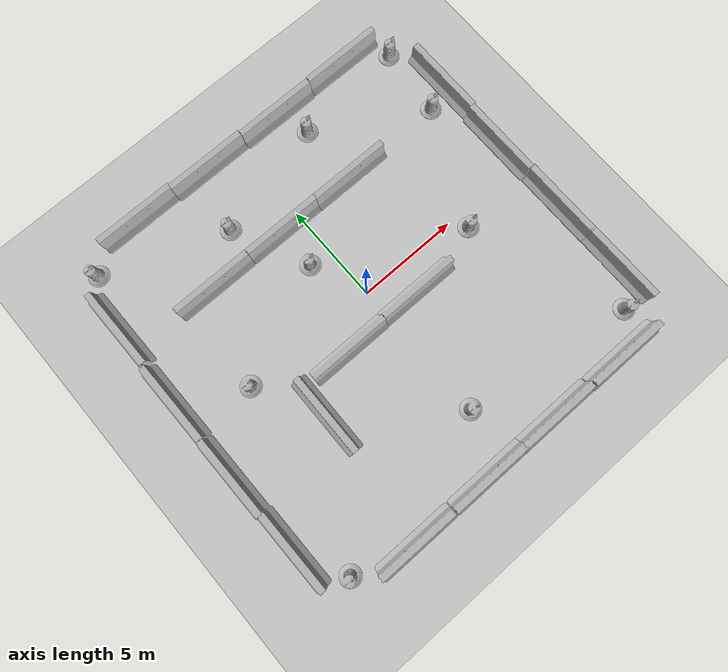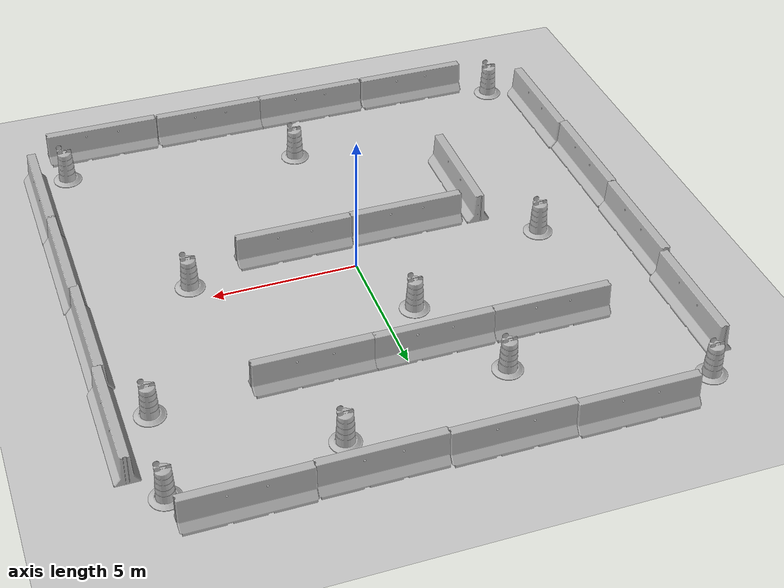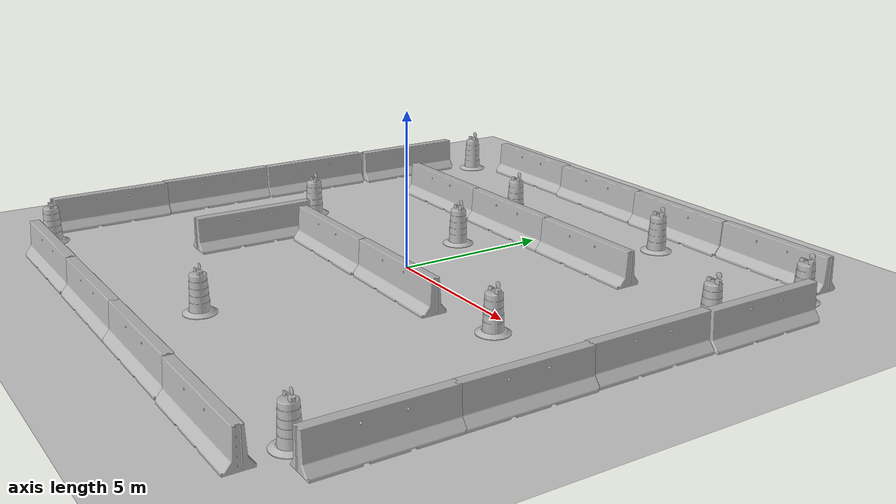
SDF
<sdf version="1.6">
 <world name="default">
  <light name="sun" type="directional">
   <pose>0 0 10 0 -0 0</pose>
   <diffuse>0.8 0.8 0.8 1</diffuse>
   <specular>0.2 0.2 0.2 1</specular>
   <attenuation>
    <range>1000</range>
    <constant>0.9</constant>
    <linear>0.01</linear>
    <quadratic>0.001</quadratic>
   </attenuation>
   <direction>-0.5 0.1 -0.9</direction>
  </light>
  <model name="ground_plane">
   <static>1</static>
   <link name="link">
    <collision name="collision">
     <geometry><plane><normal>0 0 1</normal><size>100 100</size></plane></geometry>
     <surface><friction><ode><mu>100</mu><mu2>50</mu2></ode></friction></surface>
    </collision>
    <visual name="visual">
     <cast_shadows>0</cast_shadows>
     <geometry><plane><normal>0 0 1</normal><size>100 100</size></plane></geometry>
     <material>
      <script><uri>file://media/materials/scripts/gazebo.material</uri><name>Gazebo/Grey</name></script>
     </material>
    </visual>
   </link>
  </model>
  <gravity>0 0 -9.8</gravity>
  <magnetic_field>6e-06 2.3e-05 -4.2e-05</magnetic_field>
  <atmosphere type="adiabatic"/>
  <physics name="default_physics" default="0" type="ode">
   <max_step_size>0.001</max_step_size>
   <real_time_factor>1</real_time_factor>
   <real_time_update_rate>1000</real_time_update_rate>
  </physics>
  <scene><ambient>0.4 0.4 0.4 1</ambient><background>0.7 0.7 0.7 1</background><shadows>1</shadows></scene>
  <spherical_coordinates>
   <surface_model>EARTH_WGS84</surface_model>
   <latitude_deg>0</latitude_deg>
   <longitude_deg>0</longitude_deg>
   <elevation>0</elevation>
   <heading_deg>0</heading_deg>
  </spherical_coordinates>
  <model name="jersey_barrier">
   <static>1</static>
   <link name="link">
    <visual name="visual">
     <geometry><mesh><uri>model://jersey_barrier/meshes/jersey_barrier.dae</uri></mesh></geometry>
    </visual>
    <collision name="upright">
     <pose>0 0 0.5715 0 -0 0</pose>
     <geometry><box><size>4.06542 0.3063 1.143</size></box></geometry>
    </collision>
    <collision name="base">
     <pose>0 0 0.032258 0 -0 0</pose>
     <geometry><box><size>4.06542 0.8107 0.064516</size></box></geometry>
    </collision>
    <collision name="base2">
     <pose>0 0 0.1 0 -0 0</pose>
     <geometry><box><size>4.06542 0.65 0.1</size></box></geometry>
    </collision>
    <collision name="base3">
     <pose>0 0 0.2 0 -0 0</pose>
     <geometry><box><size>4.06542 0.5 0.1</size></box></geometry>
    </collision>
    <collision name="left-angle">
     <pose>0 -0.224 0.2401 0.9 -0 0</pose>
     <geometry><box><size>4.06542 0.5 0.064516</size></box></geometry>
    </collision>
    <collision name="right-angle">
     <pose>0 0.224 0.2401 -0.9 0 0</pose>
     <geometry><box><size>4.06542 0.5 0.064516</size></box></geometry>
    </collision>
   </link>
   <pose>-5.65677 9.4608 0 0 -0 0</pose>
  </model>
  <model name="jersey_barrier_clone">
   <static>1</static>
   <link name="link">
    <visual name="visual">
     <geometry><mesh><uri>model://jersey_barrier/meshes/jersey_barrier.dae</uri></mesh></geometry>
    </visual>
    <collision name="upright">
     <pose>0 0 0.5715 0 -0 0</pose>
     <geometry><box><size>4.06542 0.3063 1.143</size></box></geometry>
    </collision>
    <collision name="base">
     <pose>0 0 0.032258 0 -0 0</pose>
     <geometry><box><size>4.06542 0.8107 0.064516</size></box></geometry>
    </collision>
    <collision name="base2">
     <pose>0 0 0.1 0 -0 0</pose>
     <geometry><box><size>4.06542 0.65 0.1</size></box></geometry>
    </collision>
    <collision name="base3">
     <pose>0 0 0.2 0 -0 0</pose>
     <geometry><box><size>4.06542 0.5 0.1</size></box></geometry>
    </collision>
    <collision name="left-angle">
     <pose>0 -0.224 0.2401 0.9 -0 0</pose>
     <geometry><box><size>4.06542 0.5 0.064516</size></box></geometry>
    </collision>
    <collision name="right-angle">
     <pose>0 0.224 0.2401 -0.9 0 0</pose>
     <geometry><box><size>4.06542 0.5 0.064516</size></box></geometry>
    </collision>
   </link>
   <pose>-1.65987 9.36075 0 0 -0 0</pose>
  </model>
  <model name="jersey_barrier_clone_0">
   <static>1</static>
   <link name="link">
    <visual name="visual">
     <geometry><mesh><uri>model://jersey_barrier/meshes/jersey_barrier.dae</uri></mesh></geometry>
    </visual>
    <collision name="upright">
     <pose>0 0 0.5715 0 -0 0</pose>
     <geometry><box><size>4.06542 0.3063 1.143</size></box></geometry>
    </collision>
    <collision name="base">
     <pose>0 0 0.032258 0 -0 0</pose>
     <geometry><box><size>4.06542 0.8107 0.064516</size></box></geometry>
    </collision>
    <collision name="base2">
     <pose>0 0 0.1 0 -0 0</pose>
     <geometry><box><size>4.06542 0.65 0.1</size></box></geometry>
    </collision>
    <collision name="base3">
     <pose>0 0 0.2 0 -0 0</pose>
     <geometry><box><size>4.06542 0.5 0.1</size></box></geometry>
    </collision>
    <collision name="left-angle">
     <pose>0 -0.224 0.2401 0.9 -0 0</pose>
     <geometry><box><size>4.06542 0.5 0.064516</size></box></geometry>
    </collision>
    <collision name="right-angle">
     <pose>0 0.224 0.2401 -0.9 0 0</pose>
     <geometry><box><size>4.06542 0.5 0.064516</size></box></geometry>
    </collision>
   </link>
   <pose>2.39773 9.29085 0 0 -0 0</pose>
  </model>
  <model name="jersey_barrier_clone_1">
   <static>1</static>
   <link name="link">
    <visual name="visual">
     <geometry><mesh><uri>model://jersey_barrier/meshes/jersey_barrier.dae</uri></mesh></geometry>
    </visual>
    <collision name="upright">
     <pose>0 0 0.5715 0 -0 0</pose>
     <geometry><box><size>4.06542 0.3063 1.143</size></box></geometry>
    </collision>
    <collision name="base">
     <pose>0 0 0.032258 0 -0 0</pose>
     <geometry><box><size>4.06542 0.8107 0.064516</size></box></geometry>
    </collision>
    <collision name="base2">
     <pose>0 0 0.1 0 -0 0</pose>
     <geometry><box><size>4.06542 0.65 0.1</size></box></geometry>
    </collision>
    <collision name="base3">
     <pose>0 0 0.2 0 -0 0</pose>
     <geometry><box><size>4.06542 0.5 0.1</size></box></geometry>
    </collision>
    <collision name="left-angle">
     <pose>0 -0.224 0.2401 0.9 -0 0</pose>
     <geometry><box><size>4.06542 0.5 0.064516</size></box></geometry>
    </collision>
    <collision name="right-angle">
     <pose>0 0.224 0.2401 -0.9 0 0</pose>
     <geometry><box><size>4.06542 0.5 0.064516</size></box></geometry>
    </collision>
   </link>
   <pose>6.45464 9.33993 0 0 -0 0</pose>
  </model>
  <model name="jersey_barrier_clone_3">
   <static>1</static>
   <link name="link">
    <visual name="visual">
     <geometry><mesh><uri>model://jersey_barrier/meshes/jersey_barrier.dae</uri></mesh></geometry>
    </visual>
    <collision name="upright">
     <pose>0 0 0.5715 0 -0 0</pose>
     <geometry><box><size>4.06542 0.3063 1.143</size></box></geometry>
    </collision>
    <collision name="base">
     <pose>0 0 0.032258 0 -0 0</pose>
     <geometry><box><size>4.06542 0.8107 0.064516</size></box></geometry>
    </collision>
    <collision name="base2">
     <pose>0 0 0.1 0 -0 0</pose>
     <geometry><box><size>4.06542 0.65 0.1</size></box></geometry>
    </collision>
    <collision name="base3">
     <pose>0 0 0.2 0 -0 0</pose>
     <geometry><box><size>4.06542 0.5 0.1</size></box></geometry>
    </collision>
    <collision name="left-angle">
     <pose>0 -0.224 0.2401 0.9 -0 0</pose>
     <geometry><box><size>4.06542 0.5 0.064516</size></box></geometry>
    </collision>
    <collision name="right-angle">
     <pose>0 0.224 0.2401 -0.9 0 0</pose>
     <geometry><box><size>4.06542 0.5 0.064516</size></box></geometry>
    </collision>
   </link>
   <pose>9.44656 5.35522 0 0 0 -1.56865</pose>
  </model>
  <model name="jersey_barrier_clone_3_clone">
   <static>1</static>
   <link name="link">
    <visual name="visual">
     <geometry><mesh><uri>model://jersey_barrier/meshes/jersey_barrier.dae</uri></mesh></geometry>
    </visual>
    <collision name="upright">
     <pose>0 0 0.5715 0 -0 0</pose>
     <geometry><box><size>4.06542 0.3063 1.143</size></box></geometry>
    </collision>
    <collision name="base">
     <pose>0 0 0.032258 0 -0 0</pose>
     <geometry><box><size>4.06542 0.8107 0.064516</size></box></geometry>
    </collision>
    <collision name="base2">
     <pose>0 0 0.1 0 -0 0</pose>
     <geometry><box><size>4.06542 0.65 0.1</size></box></geometry>
    </collision>
    <collision name="base3">
     <pose>0 0 0.2 0 -0 0</pose>
     <geometry><box><size>4.06542 0.5 0.1</size></box></geometry>
    </collision>
    <collision name="left-angle">
     <pose>0 -0.224 0.2401 0.9 -0 0</pose>
     <geometry><box><size>4.06542 0.5 0.064516</size></box></geometry>
    </collision>
    <collision name="right-angle">
     <pose>0 0.224 0.2401 -0.9 0 0</pose>
     <geometry><box><size>4.06542 0.5 0.064516</size></box></geometry>
    </collision>
   </link>
   <pose>9.3727 1.33119 0 0 0 -1.56865</pose>
  </model>
  <model name="jersey_barrier_clone_3_clone_0">
   <static>1</static>
   <link name="link">
    <visual name="visual">
     <geometry><mesh><uri>model://jersey_barrier/meshes/jersey_barrier.dae</uri></mesh></geometry>
    </visual>
    <collision name="upright">
     <pose>0 0 0.5715 0 -0 0</pose>
     <geometry><box><size>4.06542 0.3063 1.143</size></box></geometry>
    </collision>
    <collision name="base">
     <pose>0 0 0.032258 0 -0 0</pose>
     <geometry><box><size>4.06542 0.8107 0.064516</size></box></geometry>
    </collision>
    <collision name="base2">
     <pose>0 0 0.1 0 -0 0</pose>
     <geometry><box><size>4.06542 0.65 0.1</size></box></geometry>
    </collision>
    <collision name="base3">
     <pose>0 0 0.2 0 -0 0</pose>
     <geometry><box><size>4.06542 0.5 0.1</size></box></geometry>
    </collision>
    <collision name="left-angle">
     <pose>0 -0.224 0.2401 0.9 -0 0</pose>
     <geometry><box><size>4.06542 0.5 0.064516</size></box></geometry>
    </collision>
    <collision name="right-angle">
     <pose>0 0.224 0.2401 -0.9 0 0</pose>
     <geometry><box><size>4.06542 0.5 0.064516</size></box></geometry>
    </collision>
   </link>
   <pose>9.4315 -2.6268 0 0 0 -1.56865</pose>
  </model>
  <model name="jersey_barrier_clone_3_clone_1">
   <static>1</static>
   <link name="link">
    <visual name="visual">
     <geometry><mesh><uri>model://jersey_barrier/meshes/jersey_barrier.dae</uri></mesh></geometry>
    </visual>
    <collision name="upright">
     <pose>0 0 0.5715 0 -0 0</pose>
     <geometry><box><size>4.06542 0.3063 1.143</size></box></geometry>
    </collision>
    <collision name="base">
     <pose>0 0 0.032258 0 -0 0</pose>
     <geometry><box><size>4.06542 0.8107 0.064516</size></box></geometry>
    </collision>
    <collision name="base2">
     <pose>0 0 0.1 0 -0 0</pose>
     <geometry><box><size>4.06542 0.65 0.1</size></box></geometry>
    </collision>
    <collision name="base3">
     <pose>0 0 0.2 0 -0 0</pose>
     <geometry><box><size>4.06542 0.5 0.1</size></box></geometry>
    </collision>
    <collision name="left-angle">
     <pose>0 -0.224 0.2401 0.9 -0 0</pose>
     <geometry><box><size>4.06542 0.5 0.064516</size></box></geometry>
    </collision>
    <collision name="right-angle">
     <pose>0 0.224 0.2401 -0.9 0 0</pose>
     <geometry><box><size>4.06542 0.5 0.064516</size></box></geometry>
    </collision>
   </link>
   <pose>9.44969 -6.53485 0 0 0 -1.56865</pose>
  </model>
  <model name="jersey_barrier_clone_2_clone">
   <static>1</static>
   <link name="link">
    <visual name="visual">
     <geometry><mesh><uri>model://jersey_barrier/meshes/jersey_barrier.dae</uri></mesh></geometry>
    </visual>
    <collision name="upright">
     <pose>0 0 0.5715 0 -0 0</pose>
     <geometry><box><size>4.06542 0.3063 1.143</size></box></geometry>
    </collision>
    <collision name="base">
     <pose>0 0 0.032258 0 -0 0</pose>
     <geometry><box><size>4.06542 0.8107 0.064516</size></box></geometry>
    </collision>
    <collision name="base2">
     <pose>0 0 0.1 0 -0 0</pose>
     <geometry><box><size>4.06542 0.65 0.1</size></box></geometry>
    </collision>
    <collision name="base3">
     <pose>0 0 0.2 0 -0 0</pose>
     <geometry><box><size>4.06542 0.5 0.1</size></box></geometry>
    </collision>
    <collision name="left-angle">
     <pose>0 -0.224 0.2401 0.9 -0 0</pose>
     <geometry><box><size>4.06542 0.5 0.064516</size></box></geometry>
    </collision>
    <collision name="right-angle">
     <pose>0 0.224 0.2401 -0.9 0 0</pose>
     <geometry><box><size>4.06542 0.5 0.064516</size></box></geometry>
    </collision>
   </link>
   <pose>6.70657 -9.54347 0 0 -0 0</pose>
  </model>
  <model name="jersey_barrier_clone_2_clone_0">
   <static>1</static>
   <link name="link">
    <visual name="visual">
     <geometry><mesh><uri>model://jersey_barrier/meshes/jersey_barrier.dae</uri></mesh></geometry>
    </visual>
    <collision name="upright">
     <pose>0 0 0.5715 0 -0 0</pose>
     <geometry><box><size>4.06542 0.3063 1.143</size></box></geometry>
    </collision>
    <collision name="base">
     <pose>0 0 0.032258 0 -0 0</pose>
     <geometry><box><size>4.06542 0.8107 0.064516</size></box></geometry>
    </collision>
    <collision name="base2">
     <pose>0 0 0.1 0 -0 0</pose>
     <geometry><box><size>4.06542 0.65 0.1</size></box></geometry>
    </collision>
    <collision name="base3">
     <pose>0 0 0.2 0 -0 0</pose>
     <geometry><box><size>4.06542 0.5 0.1</size></box></geometry>
    </collision>
    <collision name="left-angle">
     <pose>0 -0.224 0.2401 0.9 -0 0</pose>
     <geometry><box><size>4.06542 0.5 0.064516</size></box></geometry>
    </collision>
    <collision name="right-angle">
     <pose>0 0.224 0.2401 -0.9 0 0</pose>
     <geometry><box><size>4.06542 0.5 0.064516</size></box></geometry>
    </collision>
   </link>
   <pose>2.59616 -9.50928 0 0 -0 0</pose>
  </model>
  <model name="jersey_barrier_clone_2_clone_1">
   <static>1</static>
   <link name="link">
    <visual name="visual">
     <geometry><mesh><uri>model://jersey_barrier/meshes/jersey_barrier.dae</uri></mesh></geometry>
    </visual>
    <collision name="upright">
     <pose>0 0 0.5715 0 -0 0</pose>
     <geometry><box><size>4.06542 0.3063 1.143</size></box></geometry>
    </collision>
    <collision name="base">
     <pose>0 0 0.032258 0 -0 0</pose>
     <geometry><box><size>4.06542 0.8107 0.064516</size></box></geometry>
    </collision>
    <collision name="base2">
     <pose>0 0 0.1 0 -0 0</pose>
     <geometry><box><size>4.06542 0.65 0.1</size></box></geometry>
    </collision>
    <collision name="base3">
     <pose>0 0 0.2 0 -0 0</pose>
     <geometry><box><size>4.06542 0.5 0.1</size></box></geometry>
    </collision>
    <collision name="left-angle">
     <pose>0 -0.224 0.2401 0.9 -0 0</pose>
     <geometry><box><size>4.06542 0.5 0.064516</size></box></geometry>
    </collision>
    <collision name="right-angle">
     <pose>0 0.224 0.2401 -0.9 0 0</pose>
     <geometry><box><size>4.06542 0.5 0.064516</size></box></geometry>
    </collision>
   </link>
   <pose>-1.33414 -9.50852 0 0 -0 0</pose>
  </model>
  <model name="jersey_barrier_clone_2_clone_2">
   <static>1</static>
   <link name="link">
    <visual name="visual">
     <geometry><mesh><uri>model://jersey_barrier/meshes/jersey_barrier.dae</uri></mesh></geometry>
    </visual>
    <collision name="upright">
     <pose>0 0 0.5715 0 -0 0</pose>
     <geometry><box><size>4.06542 0.3063 1.143</size></box></geometry>
    </collision>
    <collision name="base">
     <pose>0 0 0.032258 0 -0 0</pose>
     <geometry><box><size>4.06542 0.8107 0.064516</size></box></geometry>
    </collision>
    <collision name="base2">
     <pose>0 0 0.1 0 -0 0</pose>
     <geometry><box><size>4.06542 0.65 0.1</size></box></geometry>
    </collision>
    <collision name="base3">
     <pose>0 0 0.2 0 -0 0</pose>
     <geometry><box><size>4.06542 0.5 0.1</size></box></geometry>
    </collision>
    <collision name="left-angle">
     <pose>0 -0.224 0.2401 0.9 -0 0</pose>
     <geometry><box><size>4.06542 0.5 0.064516</size></box></geometry>
    </collision>
    <collision name="right-angle">
     <pose>0 0.224 0.2401 -0.9 0 0</pose>
     <geometry><box><size>4.06542 0.5 0.064516</size></box></geometry>
    </collision>
   </link>
   <pose>-5.44605 -9.49634 0 0 -0 0</pose>
  </model>
  <model name="jersey_barrier_clone_3_clone_1_clone">
   <static>1</static>
   <link name="link">
    <visual name="visual">
     <geometry><mesh><uri>model://jersey_barrier/meshes/jersey_barrier.dae</uri></mesh></geometry>
    </visual>
    <collision name="upright">
     <pose>0 0 0.5715 0 -0 0</pose>
     <geometry><box><size>4.06542 0.3063 1.143</size></box></geometry>
    </collision>
    <collision name="base">
     <pose>0 0 0.032258 0 -0 0</pose>
     <geometry><box><size>4.06542 0.8107 0.064516</size></box></geometry>
    </collision>
    <collision name="base2">
     <pose>0 0 0.1 0 -0 0</pose>
     <geometry><box><size>4.06542 0.65 0.1</size></box></geometry>
    </collision>
    <collision name="base3">
     <pose>0 0 0.2 0 -0 0</pose>
     <geometry><box><size>4.06542 0.5 0.1</size></box></geometry>
    </collision>
    <collision name="left-angle">
     <pose>0 -0.224 0.2401 0.9 -0 0</pose>
     <geometry><box><size>4.06542 0.5 0.064516</size></box></geometry>
    </collision>
    <collision name="right-angle">
     <pose>0 0.224 0.2401 -0.9 0 0</pose>
     <geometry><box><size>4.06542 0.5 0.064516</size></box></geometry>
    </collision>
   </link>
   <pose>-9.54289 -6.33149 0 0 0 -1.56865</pose>
  </model>
  <model name="jersey_barrier_clone_3_clone_1_clone_0">
   <static>1</static>
   <link name="link">
    <visual name="visual">
     <geometry><mesh><uri>model://jersey_barrier/meshes/jersey_barrier.dae</uri></mesh></geometry>
    </visual>
    <collision name="upright">
     <pose>0 0 0.5715 0 -0 0</pose>
     <geometry><box><size>4.06542 0.3063 1.143</size></box></geometry>
    </collision>
    <collision name="base">
     <pose>0 0 0.032258 0 -0 0</pose>
     <geometry><box><size>4.06542 0.8107 0.064516</size></box></geometry>
    </collision>
    <collision name="base2">
     <pose>0 0 0.1 0 -0 0</pose>
     <geometry><box><size>4.06542 0.65 0.1</size></box></geometry>
    </collision>
    <collision name="base3">
     <pose>0 0 0.2 0 -0 0</pose>
     <geometry><box><size>4.06542 0.5 0.1</size></box></geometry>
    </collision>
    <collision name="left-angle">
     <pose>0 -0.224 0.2401 0.9 -0 0</pose>
     <geometry><box><size>4.06542 0.5 0.064516</size></box></geometry>
    </collision>
    <collision name="right-angle">
     <pose>0 0.224 0.2401 -0.9 0 0</pose>
     <geometry><box><size>4.06542 0.5 0.064516</size></box></geometry>
    </collision>
   </link>
   <pose>-9.6221 -2.35336 0 0 0 -1.56865</pose>
  </model>
  <model name="jersey_barrier_clone_3_clone_1_clone_1">
   <static>1</static>
   <link name="link">
    <visual name="visual">
     <geometry><mesh><uri>model://jersey_barrier/meshes/jersey_barrier.dae</uri></mesh></geometry>
    </visual>
    <collision name="upright">
     <pose>0 0 0.5715 0 -0 0</pose>
     <geometry><box><size>4.06542 0.3063 1.143</size></box></geometry>
    </collision>
    <collision name="base">
     <pose>0 0 0.032258 0 -0 0</pose>
     <geometry><box><size>4.06542 0.8107 0.064516</size></box></geometry>
    </collision>
    <collision name="base2">
     <pose>0 0 0.1 0 -0 0</pose>
     <geometry><box><size>4.06542 0.65 0.1</size></box></geometry>
    </collision>
    <collision name="base3">
     <pose>0 0 0.2 0 -0 0</pose>
     <geometry><box><size>4.06542 0.5 0.1</size></box></geometry>
    </collision>
    <collision name="left-angle">
     <pose>0 -0.224 0.2401 0.9 -0 0</pose>
     <geometry><box><size>4.06542 0.5 0.064516</size></box></geometry>
    </collision>
    <collision name="right-angle">
     <pose>0 0.224 0.2401 -0.9 0 0</pose>
     <geometry><box><size>4.06542 0.5 0.064516</size></box></geometry>
    </collision>
   </link>
   <pose>-9.58952 1.69745 0 0 0 -1.56865</pose>
  </model>
  <model name="jersey_barrier_clone_3_clone_1_clone_2">
   <static>1</static>
   <link name="link">
    <visual name="visual">
     <geometry><mesh><uri>model://jersey_barrier/meshes/jersey_barrier.dae</uri></mesh></geometry>
    </visual>
    <collision name="upright">
     <pose>0 0 0.5715 0 -0 0</pose>
     <geometry><box><size>4.06542 0.3063 1.143</size></box></geometry>
    </collision>
    <collision name="base">
     <pose>0 0 0.032258 0 -0 0</pose>
     <geometry><box><size>4.06542 0.8107 0.064516</size></box></geometry>
    </collision>
    <collision name="base2">
     <pose>0 0 0.1 0 -0 0</pose>
     <geometry><box><size>4.06542 0.65 0.1</size></box></geometry>
    </collision>
    <collision name="base3">
     <pose>0 0 0.2 0 -0 0</pose>
     <geometry><box><size>4.06542 0.5 0.1</size></box></geometry>
    </collision>
    <collision name="left-angle">
     <pose>0 -0.224 0.2401 0.9 -0 0</pose>
     <geometry><box><size>4.06542 0.5 0.064516</size></box></geometry>
    </collision>
    <collision name="right-angle">
     <pose>0 0.224 0.2401 -0.9 0 0</pose>
     <geometry><box><size>4.06542 0.5 0.064516</size></box></geometry>
    </collision>
   </link>
   <pose>-9.44715 5.83721 0 0 0 -1.56865</pose>
  </model>
  <model name="Construction Barrel">
   <link name="link">
    <inertial>
     <pose>0 0 0.4 0 -0 0</pose>
     <mass>500</mass>
     <inertia><ixx>51.2096</ixx><iyy>51.2096</iyy><izz>25</izz><ixy>0</ixy><ixz>0</ixz><iyz>0</iyz></inertia>
    </inertial>
    <collision name="collision">
     <geometry><mesh><uri>model://construction_barrel/meshes/construction_barrel.dae</uri></mesh></geometry>
    </collision>
    <visual name="visual">
     <geometry><mesh><uri>model://construction_barrel/meshes/construction_barrel.dae</uri></mesh></geometry>
    </visual>
   </link>
   <pose>8.53271 8.19898 -1e-06 0 5e-06 -0.000131</pose>
  </model>
  <model name="Construction Barrel_0">
   <link name="link">
    <inertial>
     <pose>0 0 0.4 0 -0 0</pose>
     <mass>500</mass>
     <inertia><ixx>51.2096</ixx><iyy>51.2096</iyy><izz>25</izz><ixy>0</ixy><ixz>0</ixz><iyz>0</iyz></inertia>
    </inertial>
    <collision name="collision">
     <geometry><mesh><uri>model://construction_barrel/meshes/construction_barrel.dae</uri></mesh></geometry>
    </collision>
    <visual name="visual">
     <geometry><mesh><uri>model://construction_barrel/meshes/construction_barrel.dae</uri></mesh></geometry>
    </visual>
   </link>
   <pose>8.21544 4.7802 -1e-06 3e-06 -2e-06 -0.000134</pose>
  </model>
  <model name="Construction Barrel_1">
   <link name="link">
    <inertial>
     <pose>0 0 0.4 0 -0 0</pose>
     <mass>500</mass>
     <inertia><ixx>51.2096</ixx><iyy>51.2096</iyy><izz>25</izz><ixy>0</ixy><ixz>0</ixz><iyz>0</iyz></inertia>
    </inertial>
    <collision name="collision">
     <geometry><mesh><uri>model://construction_barrel/meshes/construction_barrel.dae</uri></mesh></geometry>
    </collision>
    <visual name="visual">
     <geometry><mesh><uri>model://construction_barrel/meshes/construction_barrel.dae</uri></mesh></geometry>
    </visual>
   </link>
   <pose>-8.71624 8.60314 -1e-06 -5e-06 -3e-06 -0.000136</pose>
  </model>
  <model name="Construction Barrel_3">
   <link name="link">
    <inertial>
     <pose>0 0 0.4 0 -0 0</pose>
     <mass>500</mass>
     <inertia><ixx>51.2096</ixx><iyy>51.2096</iyy><izz>25</izz><ixy>0</ixy><ixz>0</ixz><iyz>0</iyz></inertia>
    </inertial>
    <collision name="collision">
     <geometry><mesh><uri>model://construction_barrel/meshes/construction_barrel.dae</uri></mesh></geometry>
    </collision>
    <visual name="visual">
     <geometry><mesh><uri>model://construction_barrel/meshes/construction_barrel.dae</uri></mesh></geometry>
    </visual>
   </link>
   <pose>8.31462 -8.17656 -1e-06 3e-06 -0 -0.009013</pose>
  </model>
  <model name="Construction Barrel_4">
   <link name="link">
    <inertial>
     <pose>0 0 0.4 0 -0 0</pose>
     <mass>500</mass>
     <inertia><ixx>51.2096</ixx><iyy>51.2096</iyy><izz>25</izz><ixy>0</ixy><ixz>0</ixz><iyz>0</iyz></inertia>
    </inertial>
    <collision name="collision">
     <geometry><mesh><uri>model://construction_barrel/meshes/construction_barrel.dae</uri></mesh></geometry>
    </collision>
    <visual name="visual">
     <geometry><mesh><uri>model://construction_barrel/meshes/construction_barrel.dae</uri></mesh></geometry>
    </visual>
   </link>
   <pose>-8.4481 -8.7205 -1e-06 1e-06 -9e-06 -0.023205</pose>
  </model>
  <model name="Construction Barrel_5">
   <link name="link">
    <inertial>
     <pose>0 0 0.4 0 -0 0</pose>
     <mass>500</mass>
     <inertia><ixx>51.2096</ixx><iyy>51.2096</iyy><izz>25</izz><ixy>0</ixy><ixz>0</ixz><iyz>0</iyz></inertia>
    </inertial>
    <collision name="collision">
     <geometry><mesh><uri>model://construction_barrel/meshes/construction_barrel.dae</uri></mesh></geometry>
    </collision>
    <visual name="visual">
     <geometry><mesh><uri>model://construction_barrel/meshes/construction_barrel.dae</uri></mesh></geometry>
    </visual>
   </link>
   <pose>-1.08867 2.68069 1e-06 1e-06 1e-06 -0.041264</pose>
  </model>
  <model name="jersey_barrier_0">
   <static>1</static>
   <link name="link">
    <visual name="visual">
     <geometry><mesh><uri>model://jersey_barrier/meshes/jersey_barrier.dae</uri></mesh></geometry>
    </visual>
    <collision name="upright">
     <pose>0 0 0.5715 0 -0 0</pose>
     <geometry><box><size>4.06542 0.3063 1.143</size></box></geometry>
    </collision>
    <collision name="base">
     <pose>0 0 0.032258 0 -0 0</pose>
     <geometry><box><size>4.06542 0.8107 0.064516</size></box></geometry>
    </collision>
    <collision name="base2">
     <pose>0 0 0.1 0 -0 0</pose>
     <geometry><box><size>4.06542 0.65 0.1</size></box></geometry>
    </collision>
    <collision name="base3">
     <pose>0 0 0.2 0 -0 0</pose>
     <geometry><box><size>4.06542 0.5 0.1</size></box></geometry>
    </collision>
    <collision name="left-angle">
     <pose>0 -0.224 0.2401 0.9 -0 0</pose>
     <geometry><box><size>4.06542 0.5 0.064516</size></box></geometry>
    </collision>
    <collision name="right-angle">
     <pose>0 0.224 0.2401 -0.9 0 0</pose>
     <geometry><box><size>4.06542 0.5 0.064516</size></box></geometry>
    </collision>
   </link>
   <pose>-4.97429 4.73074 0 0 -0 0</pose>
  </model>
  <model name="jersey_barrier_0_clone">
   <static>1</static>
   <link name="link">
    <visual name="visual">
     <geometry><mesh><uri>model://jersey_barrier/meshes/jersey_barrier.dae</uri></mesh></geometry>
    </visual>
    <collision name="upright">
     <pose>0 0 0.5715 0 -0 0</pose>
     <geometry><box><size>4.06542 0.3063 1.143</size></box></geometry>
    </collision>
    <collision name="base">
     <pose>0 0 0.032258 0 -0 0</pose>
     <geometry><box><size>4.06542 0.8107 0.064516</size></box></geometry>
    </collision>
    <collision name="base2">
     <pose>0 0 0.1 0 -0 0</pose>
     <geometry><box><size>4.06542 0.65 0.1</size></box></geometry>
    </collision>
    <collision name="base3">
     <pose>0 0 0.2 0 -0 0</pose>
     <geometry><box><size>4.06542 0.5 0.1</size></box></geometry>
    </collision>
    <collision name="left-angle">
     <pose>0 -0.224 0.2401 0.9 -0 0</pose>
     <geometry><box><size>4.06542 0.5 0.064516</size></box></geometry>
    </collision>
    <collision name="right-angle">
     <pose>0 0.224 0.2401 -0.9 0 0</pose>
     <geometry><box><size>4.06542 0.5 0.064516</size></box></geometry>
    </collision>
   </link>
   <pose>-0.93635 4.73131 0 0 -0 0</pose>
  </model>
  <model name="jersey_barrier_0_clone_0">
   <static>1</static>
   <link name="link">
    <visual name="visual">
     <geometry><mesh><uri>model://jersey_barrier/meshes/jersey_barrier.dae</uri></mesh></geometry>
    </visual>
    <collision name="upright">
     <pose>0 0 0.5715 0 -0 0</pose>
     <geometry><box><size>4.06542 0.3063 1.143</size></box></geometry>
    </collision>
    <collision name="base">
     <pose>0 0 0.032258 0 -0 0</pose>
     <geometry><box><size>4.06542 0.8107 0.064516</size></box></geometry>
    </collision>
    <collision name="base2">
     <pose>0 0 0.1 0 -0 0</pose>
     <geometry><box><size>4.06542 0.65 0.1</size></box></geometry>
    </collision>
    <collision name="base3">
     <pose>0 0 0.2 0 -0 0</pose>
     <geometry><box><size>4.06542 0.5 0.1</size></box></geometry>
    </collision>
    <collision name="left-angle">
     <pose>0 -0.224 0.2401 0.9 -0 0</pose>
     <geometry><box><size>4.06542 0.5 0.064516</size></box></geometry>
    </collision>
    <collision name="right-angle">
     <pose>0 0.224 0.2401 -0.9 0 0</pose>
     <geometry><box><size>4.06542 0.5 0.064516</size></box></geometry>
    </collision>
   </link>
   <pose>2.99134 4.7208 0 0 -0 0</pose>
  </model>
  <model name="jersey_barrier_0_clone_1">
   <static>1</static>
   <link name="link">
    <visual name="visual">
     <geometry><mesh><uri>model://jersey_barrier/meshes/jersey_barrier.dae</uri></mesh></geometry>
    </visual>
    <collision name="upright">
     <pose>0 0 0.5715 0 -0 0</pose>
     <geometry><box><size>4.06542 0.3063 1.143</size></box></geometry>
    </collision>
    <collision name="base">
     <pose>0 0 0.032258 0 -0 0</pose>
     <geometry><box><size>4.06542 0.8107 0.064516</size></box></geometry>
    </collision>
    <collision name="base2">
     <pose>0 0 0.1 0 -0 0</pose>
     <geometry><box><size>4.06542 0.65 0.1</size></box></geometry>
    </collision>
    <collision name="base3">
     <pose>0 0 0.2 0 -0 0</pose>
     <geometry><box><size>4.06542 0.5 0.1</size></box></geometry>
    </collision>
    <collision name="left-angle">
     <pose>0 -0.224 0.2401 0.9 -0 0</pose>
     <geometry><box><size>4.06542 0.5 0.064516</size></box></geometry>
    </collision>
    <collision name="right-angle">
     <pose>0 0.224 0.2401 -0.9 0 0</pose>
     <geometry><box><size>4.06542 0.5 0.064516</size></box></geometry>
    </collision>
   </link>
   <pose>-2.28125 -1.44022 0 0 -0 0</pose>
  </model>
  <model name="jersey_barrier_0_clone_1_clone">
   <static>1</static>
   <link name="link">
    <visual name="visual">
     <geometry><mesh><uri>model://jersey_barrier/meshes/jersey_barrier.dae</uri></mesh></geometry>
    </visual>
    <collision name="upright">
     <pose>0 0 0.5715 0 -0 0</pose>
     <geometry><box><size>4.06542 0.3063 1.143</size></box></geometry>
    </collision>
    <collision name="base">
     <pose>0 0 0.032258 0 -0 0</pose>
     <geometry><box><size>4.06542 0.8107 0.064516</size></box></geometry>
    </collision>
    <collision name="base2">
     <pose>0 0 0.1 0 -0 0</pose>
     <geometry><box><size>4.06542 0.65 0.1</size></box></geometry>
    </collision>
    <collision name="base3">
     <pose>0 0 0.2 0 -0 0</pose>
     <geometry><box><size>4.06542 0.5 0.1</size></box></geometry>
    </collision>
    <collision name="left-angle">
     <pose>0 -0.224 0.2401 0.9 -0 0</pose>
     <geometry><box><size>4.06542 0.5 0.064516</size></box></geometry>
    </collision>
    <collision name="right-angle">
     <pose>0 0.224 0.2401 -0.9 0 0</pose>
     <geometry><box><size>4.06542 0.5 0.064516</size></box></geometry>
    </collision>
   </link>
   <pose>1.76519 -1.41732 0 0 -0 0</pose>
  </model>
  <model name="jersey_barrier_0_clone_1_clone_clone">
   <static>1</static>
   <link name="link">
    <visual name="visual">
     <geometry><mesh><uri>model://jersey_barrier/meshes/jersey_barrier.dae</uri></mesh></geometry>
    </visual>
    <collision name="upright">
     <pose>0 0 0.5715 0 -0 0</pose>
     <geometry><box><size>4.06542 0.3063 1.143</size></box></geometry>
    </collision>
    <collision name="base">
     <pose>0 0 0.032258 0 -0 0</pose>
     <geometry><box><size>4.06542 0.8107 0.064516</size></box></geometry>
    </collision>
    <collision name="base2">
     <pose>0 0 0.1 0 -0 0</pose>
     <geometry><box><size>4.06542 0.65 0.1</size></box></geometry>
    </collision>
    <collision name="base3">
     <pose>0 0 0.2 0 -0 0</pose>
     <geometry><box><size>4.06542 0.5 0.1</size></box></geometry>
    </collision>
    <collision name="left-angle">
     <pose>0 -0.224 0.2401 0.9 -0 0</pose>
     <geometry><box><size>4.06542 0.5 0.064516</size></box></geometry>
    </collision>
    <collision name="right-angle">
     <pose>0 0.224 0.2401 -0.9 0 0</pose>
     <geometry><box><size>4.06542 0.5 0.064516</size></box></geometry>
    </collision>
   </link>
   <pose>-4.89176 -2.98855 0 0 0 -1.58136</pose>
  </model>
  <model name="Construction Barrel_6">
   <link name="link">
    <inertial>
     <pose>0 0 0.4 0 -0 0</pose>
     <mass>500</mass>
     <inertia><ixx>51.2096</ixx><iyy>51.2096</iyy><izz>25</izz><ixy>0</ixy><ixz>0</ixz><iyz>0</iyz></inertia>
    </inertial>
    <collision name="collision">
     <geometry><mesh><uri>model://construction_barrel/meshes/construction_barrel.dae</uri></mesh></geometry>
    </collision>
    <visual name="visual">
     <geometry><mesh><uri>model://construction_barrel/meshes/construction_barrel.dae</uri></mesh></geometry>
    </visual>
   </link>
   <pose>-6.6205 0.172268 -2e-06 8e-06 -4e-06 0.000148</pose>
  </model>
  <model name="Construction Barrel_6_clone">
   <link name="link">
    <inertial>
     <pose>0 0 0.4 0 -0 0</pose>
     <mass>500</mass>
     <inertia><ixx>51.2096</ixx><iyy>51.2096</iyy><izz>25</izz><ixy>0</ixy><ixz>0</ixz><iyz>0</iyz></inertia>
    </inertial>
    <collision name="collision">
     <geometry><mesh><uri>model://construction_barrel/meshes/construction_barrel.dae</uri></mesh></geometry>
    </collision>
    <visual name="visual">
     <geometry><mesh><uri>model://construction_barrel/meshes/construction_barrel.dae</uri></mesh></geometry>
    </visual>
   </link>
   <pose>5.59892 -0.731389 0 0 -0 7.7e-05</pose>
  </model>
  <model name="Construction Barrel_6_clone_0">
   <link name="link">
    <inertial>
     <pose>0 0 0.4 0 -0 0</pose>
     <mass>500</mass>
     <inertia><ixx>51.2096</ixx><iyy>51.2096</iyy><izz>25</izz><ixy>0</ixy><ixz>0</ixz><iyz>0</iyz></inertia>
    </inertial>
    <collision name="collision">
     <geometry><mesh><uri>model://construction_barrel/meshes/construction_barrel.dae</uri></mesh></geometry>
    </collision>
    <visual name="visual">
     <geometry><mesh><uri>model://construction_barrel/meshes/construction_barrel.dae</uri></mesh></geometry>
    </visual>
   </link>
   <pose>0.0444 -6.93288 -2e-06 8e-06 -4e-06 0.000154</pose>
  </model>
  <model name="Construction Barrel_6_clone_1">
   <link name="link">
    <inertial>
     <pose>0 0 0.4 0 -0 0</pose>
     <mass>500</mass>
     <inertia><ixx>51.2096</ixx><iyy>51.2096</iyy><izz>25</izz><ixy>0</ixy><ixz>0</ixz><iyz>0</iyz></inertia>
    </inertial>
    <collision name="collision">
     <geometry><mesh><uri>model://construction_barrel/meshes/construction_barrel.dae</uri></mesh></geometry>
    </collision>
    <visual name="visual">
     <geometry><mesh><uri>model://construction_barrel/meshes/construction_barrel.dae</uri></mesh></geometry>
    </visual>
   </link>
   <pose>2.99412 7.75359 -2e-06 2e-06 7e-06 7.1e-05</pose>
  </model>
  <model name="Construction Barrel_6_clone_2">
   <link name="link">
    <inertial>
     <pose>0 0 0.4 0 -0 0</pose>
     <mass>500</mass>
     <inertia><ixx>51.2096</ixx><iyy>51.2096</iyy><izz>25</izz><ixy>0</ixy><ixz>0</ixz><iyz>0</iyz></inertia>
    </inertial>
    <collision name="collision">
     <geometry><mesh><uri>model://construction_barrel/meshes/construction_barrel.dae</uri></mesh></geometry>
    </collision>
    <visual name="visual">
     <geometry><mesh><uri>model://construction_barrel/meshes/construction_barrel.dae</uri></mesh></geometry>
    </visual>
   </link>
   <pose>-2.80132 6.36807 -4e-06 -5e-06 -7e-06 0.000145</pose>
  </model>
 </world>
</sdf>
